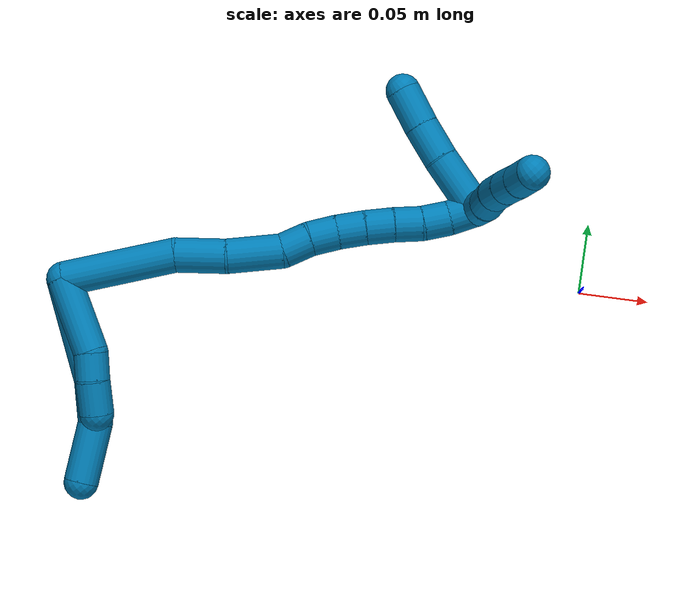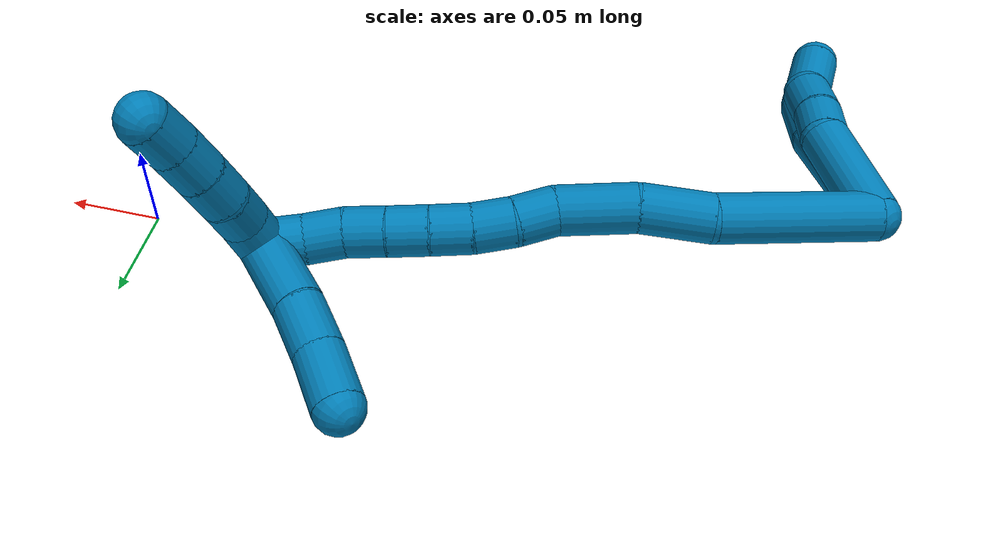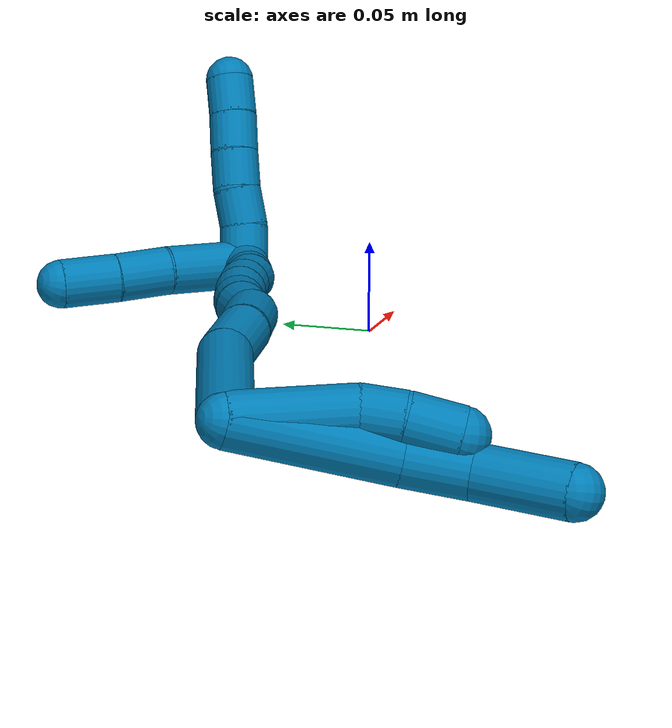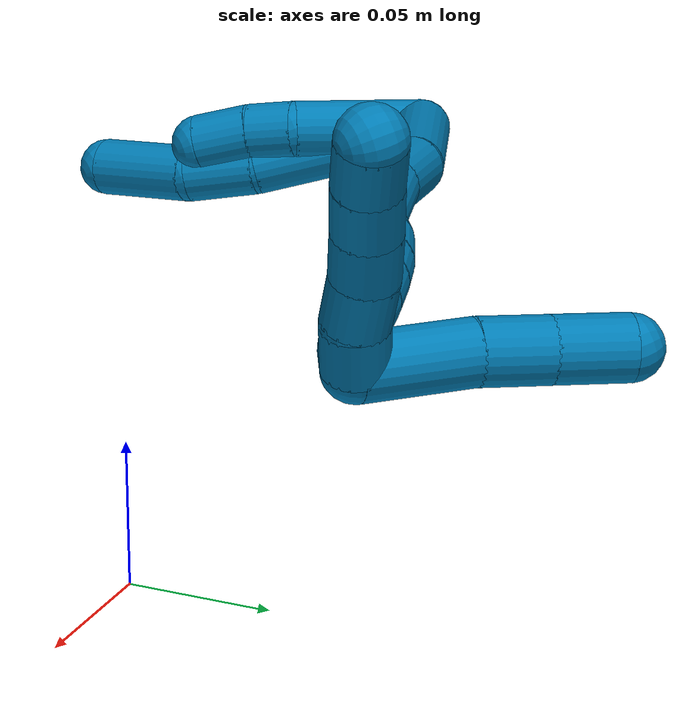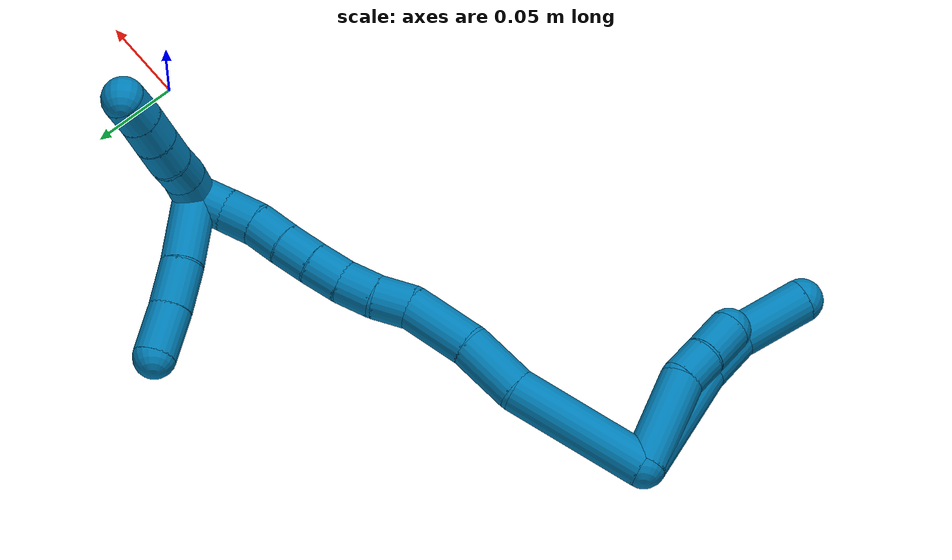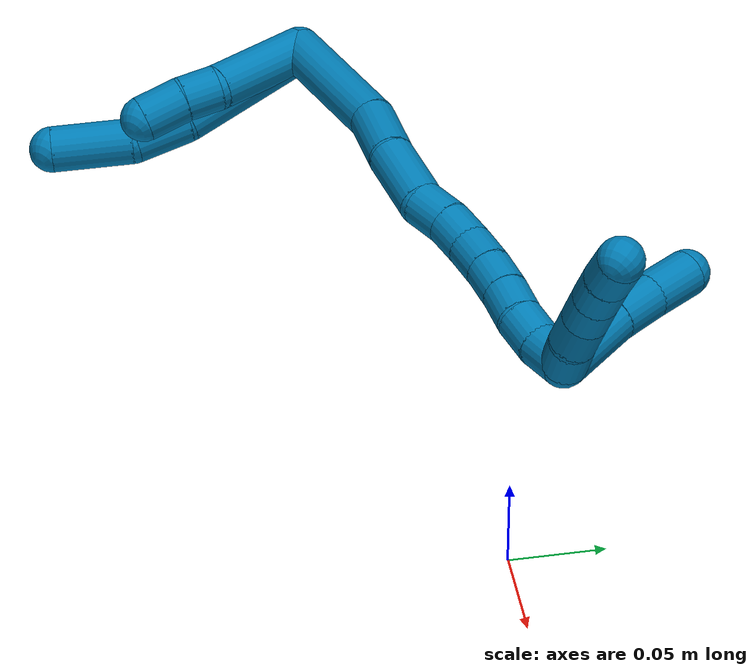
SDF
<sdf version="1.7">
 <world name="default">
  <model name="9">
   <static>0</static>
   <link name="9">
    <collision name="collision-cylinder-e_1_2_8">
     <pose>-0.004728 -0.015095 0.034195 0.41571 -0.125818 -0.026569</pose>
     <geometry><cylinder><radius>0.0125</radius><length>0.075352</length></cylinder></geometry>
     <surface>
      <friction><ode><mu>1.16</mu><mu2>1.16</mu2><slip1>0</slip1><slip2>0</slip2></ode></friction>
      <contact><ode><kp>1e+06</kp><kd>1</kd><max_vel>0</max_vel><min_depth>0.001</min_depth></ode></contact>
     </surface>
    </collision>
    <visual name="visual-cylinder-e_1_2_8">
     <pose>-0.004728 -0.015095 0.034195 0.41571 -0.125818 -0.026569</pose>
     <geometry><cylinder><radius>0.0125</radius><length>0.075352</length></cylinder></geometry>
     <material><ambient>0 0.490196 0.709804 1</ambient></material>
    </visual>
    <collision name="collision-cylinder-e_2_8_9">
     <pose>-0.013067 -0.038223 0.081009 0.566916 -0.236869 -0.069297</pose>
     <geometry><cylinder><radius>0.0125</radius><length>0.030777</length></cylinder></geometry>
     <surface>
      <friction><ode><mu>1.16</mu><mu2>1.16</mu2><slip1>0</slip1><slip2>0</slip2></ode></friction>
      <contact><ode><kp>1e+06</kp><kd>1</kd><max_vel>0</max_vel><min_depth>0.001</min_depth></ode></contact>
     </surface>
    </collision>
    <visual name="visual-cylinder-e_2_8_9">
     <pose>-0.013067 -0.038223 0.081009 0.566916 -0.236869 -0.069297</pose>
     <geometry><cylinder><radius>0.0125</radius><length>0.030777</length></cylinder></geometry>
     <material><ambient>0 0.490196 0.709804 1</ambient></material>
    </visual>
    <collision name="collision-cylinder-e_3_9_6">
     <pose>-0.024746 -0.062039 0.106549 0.884721 -0.376651 -0.180059</pose>
     <geometry><cylinder><radius>0.0125</radius><length>0.04387</length></cylinder></geometry>
     <surface>
      <friction><ode><mu>1.16</mu><mu2>1.16</mu2><slip1>0</slip1><slip2>0</slip2></ode></friction>
      <contact><ode><kp>1e+06</kp><kd>1</kd><max_vel>0</max_vel><min_depth>0.001</min_depth></ode></contact>
     </surface>
    </collision>
    <visual name="visual-cylinder-e_3_9_6">
     <pose>-0.024746 -0.062039 0.106549 0.884721 -0.376651 -0.180059</pose>
     <geometry><cylinder><radius>0.0125</radius><length>0.04387</length></cylinder></geometry>
     <material><ambient>0 0.490196 0.709804 1</ambient></material>
    </visual>
    <collision name="collision-cylinder-e_1_2_10">
     <pose>-0.009247 -0.006392 0.025627 0.244449 -0.336781 -0.041759</pose>
     <geometry><cylinder><radius>0.0125</radius><length>0.055969</length></cylinder></geometry>
     <surface>
      <friction><ode><mu>1.16</mu><mu2>1.16</mu2><slip1>0</slip1><slip2>0</slip2></ode></friction>
      <contact><ode><kp>1e+06</kp><kd>1</kd><max_vel>0</max_vel><min_depth>0.001</min_depth></ode></contact>
     </surface>
    </collision>
    <visual name="visual-cylinder-e_1_2_10">
     <pose>-0.009247 -0.006392 0.025627 0.244449 -0.336781 -0.041759</pose>
     <geometry><cylinder><radius>0.0125</radius><length>0.055969</length></cylinder></geometry>
     <material><ambient>0 0.490196 0.709804 1</ambient></material>
    </visual>
    <collision name="collision-cylinder-e_2_10_11">
     <pose>-0.021281 -0.018078 0.059269 0.583696 -0.282299 -0.085326</pose>
     <geometry><cylinder><radius>0.0125</radius><length>0.020002</length></cylinder></geometry>
     <surface>
      <friction><ode><mu>1.16</mu><mu2>1.16</mu2><slip1>0</slip1><slip2>0</slip2></ode></friction>
      <contact><ode><kp>1e+06</kp><kd>1</kd><max_vel>0</max_vel><min_depth>0.001</min_depth></ode></contact>
     </surface>
    </collision>
    <visual name="visual-cylinder-e_2_10_11">
     <pose>-0.021281 -0.018078 0.059269 0.583696 -0.282299 -0.085326</pose>
     <geometry><cylinder><radius>0.0125</radius><length>0.020002</length></cylinder></geometry>
     <material><ambient>0 0.490196 0.709804 1</ambient></material>
    </visual>
    <collision name="collision-cylinder-e_3_11_5">
     <pose>-0.02585 -0.029727 0.077322 0.564417 -0.148959 -0.043263</pose>
     <geometry><cylinder><radius>0.0125</radius><length>0.02403</length></cylinder></geometry>
     <surface>
      <friction><ode><mu>1.16</mu><mu2>1.16</mu2><slip1>0</slip1><slip2>0</slip2></ode></friction>
      <contact><ode><kp>1e+06</kp><kd>1</kd><max_vel>0</max_vel><min_depth>0.001</min_depth></ode></contact>
     </surface>
    </collision>
    <visual name="visual-cylinder-e_3_11_5">
     <pose>-0.02585 -0.029727 0.077322 0.564417 -0.148959 -0.043263</pose>
     <geometry><cylinder><radius>0.0125</radius><length>0.02403</length></cylinder></geometry>
     <material><ambient>0 0.490196 0.709804 1</ambient></material>
    </visual>
    <collision name="collision-cylinder-e_1_2_12">
     <pose>0.00703 0.03579 0.018399 -1.09593 0.172938 -0.105711</pose>
     <geometry><cylinder><radius>0.0125</radius><length>0.081703</length></cylinder></geometry>
     <surface>
      <friction><ode><mu>1.16</mu><mu2>1.16</mu2><slip1>0</slip1><slip2>0</slip2></ode></friction>
      <contact><ode><kp>1e+06</kp><kd>1</kd><max_vel>0</max_vel><min_depth>0.001</min_depth></ode></contact>
     </surface>
    </collision>
    <visual name="visual-cylinder-e_1_2_12">
     <pose>0.00703 0.03579 0.018399 -1.09593 0.172938 -0.105711</pose>
     <geometry><cylinder><radius>0.0125</radius><length>0.081703</length></cylinder></geometry>
     <material><ambient>0 0.490196 0.709804 1</ambient></material>
    </visual>
    <collision name="collision-cylinder-e_2_12_13">
     <pose>0.015894 0.085343 0.048424 -0.869446 0.101499 -0.047163</pose>
     <geometry><cylinder><radius>0.0125</radius><length>0.036219</length></cylinder></geometry>
     <surface>
      <friction><ode><mu>1.16</mu><mu2>1.16</mu2><slip1>0</slip1><slip2>0</slip2></ode></friction>
      <contact><ode><kp>1e+06</kp><kd>1</kd><max_vel>0</max_vel><min_depth>0.001</min_depth></ode></contact>
     </surface>
    </collision>
    <visual name="visual-cylinder-e_2_12_13">
     <pose>0.015894 0.085343 0.048424 -0.869446 0.101499 -0.047163</pose>
     <geometry><cylinder><radius>0.0125</radius><length>0.036219</length></cylinder></geometry>
     <material><ambient>0 0.490196 0.709804 1</ambient></material>
    </visual>
    <collision name="collision-cylinder-e_3_13_14">
     <pose>0.022908 0.114698 0.071337 -0.944119 0.262848 -0.134773</pose>
     <geometry><cylinder><radius>0.0125</radius><length>0.039866</length></cylinder></geometry>
     <surface>
      <friction><ode><mu>1.16</mu><mu2>1.16</mu2><slip1>0</slip1><slip2>0</slip2></ode></friction>
      <contact><ode><kp>1e+06</kp><kd>1</kd><max_vel>0</max_vel><min_depth>0.001</min_depth></ode></contact>
     </surface>
    </collision>
    <visual name="visual-cylinder-e_3_13_14">
     <pose>0.022908 0.114698 0.071337 -0.944119 0.262848 -0.134773</pose>
     <geometry><cylinder><radius>0.0125</radius><length>0.039866</length></cylinder></geometry>
     <material><ambient>0 0.490196 0.709804 1</ambient></material>
    </visual>
    <collision name="collision-cylinder-e_4_14_15">
     <pose>0.031845 0.139673 0.085594 -1.26442 0.364667 -0.268495</pose>
     <geometry><cylinder><radius>0.0125</radius><length>0.021071</length></cylinder></geometry>
     <surface>
      <friction><ode><mu>1.16</mu><mu2>1.16</mu2><slip1>0</slip1><slip2>0</slip2></ode></friction>
      <contact><ode><kp>1e+06</kp><kd>1</kd><max_vel>0</max_vel><min_depth>0.001</min_depth></ode></contact>
     </surface>
    </collision>
    <visual name="visual-cylinder-e_4_14_15">
     <pose>0.031845 0.139673 0.085594 -1.26442 0.364667 -0.268495</pose>
     <geometry><cylinder><radius>0.0125</radius><length>0.021071</length></cylinder></geometry>
     <material><ambient>0 0.490196 0.709804 1</ambient></material>
    </visual>
    <collision name="collision-cylinder-e_5_15_16">
     <pose>0.039036 0.157533 0.093087 -1.08054 0.343239 -0.207174</pose>
     <geometry><cylinder><radius>0.0125</radius><length>0.020404</length></cylinder></geometry>
     <surface>
      <friction><ode><mu>1.16</mu><mu2>1.16</mu2><slip1>0</slip1><slip2>0</slip2></ode></friction>
      <contact><ode><kp>1e+06</kp><kd>1</kd><max_vel>0</max_vel><min_depth>0.001</min_depth></ode></contact>
     </surface>
    </collision>
    <visual name="visual-cylinder-e_5_15_16">
     <pose>0.039036 0.157533 0.093087 -1.08054 0.343239 -0.207174</pose>
     <geometry><cylinder><radius>0.0125</radius><length>0.020404</length></cylinder></geometry>
     <material><ambient>0 0.490196 0.709804 1</ambient></material>
    </visual>
    <collision name="collision-cylinder-e_6_16_17">
     <pose>0.044853 0.174502 0.102804 -1.02195 0.234993 -0.132162</pose>
     <geometry><cylinder><radius>0.0125</radius><length>0.020475</length></cylinder></geometry>
     <surface>
      <friction><ode><mu>1.16</mu><mu2>1.16</mu2><slip1>0</slip1><slip2>0</slip2></ode></friction>
      <contact><ode><kp>1e+06</kp><kd>1</kd><max_vel>0</max_vel><min_depth>0.001</min_depth></ode></contact>
     </surface>
    </collision>
    <visual name="visual-cylinder-e_6_16_17">
     <pose>0.044853 0.174502 0.102804 -1.02195 0.234993 -0.132162</pose>
     <geometry><cylinder><radius>0.0125</radius><length>0.020475</length></cylinder></geometry>
     <material><ambient>0 0.490196 0.709804 1</ambient></material>
    </visual>
    <collision name="collision-cylinder-e_7_17_18">
     <pose>0.049762 0.19097 0.11364 -0.955069 0.252975 -0.131423</pose>
     <geometry><cylinder><radius>0.0125</radius><length>0.020178</length></cylinder></geometry>
     <surface>
      <friction><ode><mu>1.16</mu><mu2>1.16</mu2><slip1>0</slip1><slip2>0</slip2></ode></friction>
      <contact><ode><kp>1e+06</kp><kd>1</kd><max_vel>0</max_vel><min_depth>0.001</min_depth></ode></contact>
     </surface>
    </collision>
    <visual name="visual-cylinder-e_7_17_18">
     <pose>0.049762 0.19097 0.11364 -0.955069 0.252975 -0.131423</pose>
     <geometry><cylinder><radius>0.0125</radius><length>0.020178</length></cylinder></geometry>
     <material><ambient>0 0.490196 0.709804 1</ambient></material>
    </visual>
    <collision name="collision-cylinder-e_8_18_19">
     <pose>0.054926 0.20643 0.125378 -0.88729 0.266821 -0.127389</pose>
     <geometry><cylinder><radius>0.0125</radius><length>0.020017</length></cylinder></geometry>
     <surface>
      <friction><ode><mu>1.16</mu><mu2>1.16</mu2><slip1>0</slip1><slip2>0</slip2></ode></friction>
      <contact><ode><kp>1e+06</kp><kd>1</kd><max_vel>0</max_vel><min_depth>0.001</min_depth></ode></contact>
     </surface>
    </collision>
    <visual name="visual-cylinder-e_8_18_19">
     <pose>0.054926 0.20643 0.125378 -0.88729 0.266821 -0.127389</pose>
     <geometry><cylinder><radius>0.0125</radius><length>0.020017</length></cylinder></geometry>
     <material><ambient>0 0.490196 0.709804 1</ambient></material>
    </visual>
    <collision name="collision-cylinder-e_9_19_20">
     <pose>0.061294 0.221863 0.136329 -1.02251 0.380858 -0.215448</pose>
     <geometry><cylinder><radius>0.0125</radius><length>0.020064</length></cylinder></geometry>
     <surface>
      <friction><ode><mu>1.16</mu><mu2>1.16</mu2><slip1>0</slip1><slip2>0</slip2></ode></friction>
      <contact><ode><kp>1e+06</kp><kd>1</kd><max_vel>0</max_vel><min_depth>0.001</min_depth></ode></contact>
     </surface>
    </collision>
    <visual name="visual-cylinder-e_9_19_20">
     <pose>0.061294 0.221863 0.136329 -1.02251 0.380858 -0.215448</pose>
     <geometry><cylinder><radius>0.0125</radius><length>0.020064</length></cylinder></geometry>
     <material><ambient>0 0.490196 0.709804 1</ambient></material>
    </visual>
    <collision name="collision-cylinder-e_10_20_1">
     <pose>0.067409 0.238827 0.144797 -1.18962 0.240905 -0.163411</pose>
     <geometry><cylinder><radius>0.0125</radius><length>0.020002</length></cylinder></geometry>
     <surface>
      <friction><ode><mu>1.16</mu><mu2>1.16</mu2><slip1>0</slip1><slip2>0</slip2></ode></friction>
      <contact><ode><kp>1e+06</kp><kd>1</kd><max_vel>0</max_vel><min_depth>0.001</min_depth></ode></contact>
     </surface>
    </collision>
    <visual name="visual-cylinder-e_10_20_1">
     <pose>0.067409 0.238827 0.144797 -1.18962 0.240905 -0.163411</pose>
     <geometry><cylinder><radius>0.0125</radius><length>0.020002</length></cylinder></geometry>
     <material><ambient>0 0.490196 0.709804 1</ambient></material>
    </visual>
    <collision name="collision-cylinder-e_1_1_21">
     <pose>0.074722 0.248164 0.127235 -3.12638 0.228567 -3.00929</pose>
     <geometry><cylinder><radius>0.0125</radius><length>0.043486</length></cylinder></geometry>
     <surface>
      <friction><ode><mu>1.16</mu><mu2>1.16</mu2><slip1>0</slip1><slip2>0</slip2></ode></friction>
      <contact><ode><kp>1e+06</kp><kd>1</kd><max_vel>0</max_vel><min_depth>0.001</min_depth></ode></contact>
     </surface>
    </collision>
    <visual name="visual-cylinder-e_1_1_21">
     <pose>0.074722 0.248164 0.127235 -3.12638 0.228567 -3.00929</pose>
     <geometry><cylinder><radius>0.0125</radius><length>0.043486</length></cylinder></geometry>
     <material><ambient>0 0.490196 0.709804 1</ambient></material>
    </visual>
    <collision name="collision-cylinder-e_2_21_22">
     <pose>0.084085 0.249213 0.09314 -3.08537 0.330304 -2.80734</pose>
     <geometry><cylinder><radius>0.0125</radius><length>0.027359</length></cylinder></geometry>
     <surface>
      <friction><ode><mu>1.16</mu><mu2>1.16</mu2><slip1>0</slip1><slip2>0</slip2></ode></friction>
      <contact><ode><kp>1e+06</kp><kd>1</kd><max_vel>0</max_vel><min_depth>0.001</min_depth></ode></contact>
     </surface>
    </collision>
    <visual name="visual-cylinder-e_2_21_22">
     <pose>0.084085 0.249213 0.09314 -3.08537 0.330304 -2.80734</pose>
     <geometry><cylinder><radius>0.0125</radius><length>0.027359</length></cylinder></geometry>
     <material><ambient>0 0.490196 0.709804 1</ambient></material>
    </visual>
    <collision name="collision-cylinder-e_3_22_4">
     <pose>0.093271 0.25159 0.066537 -3.02163 0.331844 -2.45296</pose>
     <geometry><cylinder><radius>0.0125</radius><length>0.029155</length></cylinder></geometry>
     <surface>
      <friction><ode><mu>1.16</mu><mu2>1.16</mu2><slip1>0</slip1><slip2>0</slip2></ode></friction>
      <contact><ode><kp>1e+06</kp><kd>1</kd><max_vel>0</max_vel><min_depth>0.001</min_depth></ode></contact>
     </surface>
    </collision>
    <visual name="visual-cylinder-e_3_22_4">
     <pose>0.093271 0.25159 0.066537 -3.02163 0.331844 -2.45296</pose>
     <geometry><cylinder><radius>0.0125</radius><length>0.029155</length></cylinder></geometry>
     <material><ambient>0 0.490196 0.709804 1</ambient></material>
    </visual>
    <collision name="collision-cylinder-e_1_1_23">
     <pose>0.062268 0.254409 0.147935 -1.64292 -0.852133 0.907754</pose>
     <geometry><cylinder><radius>0.0125</radius><length>0.02</length></cylinder></geometry>
     <surface>
      <friction><ode><mu>1.16</mu><mu2>1.16</mu2><slip1>0</slip1><slip2>0</slip2></ode></friction>
      <contact><ode><kp>1e+06</kp><kd>1</kd><max_vel>0</max_vel><min_depth>0.001</min_depth></ode></contact>
     </surface>
    </collision>
    <visual name="visual-cylinder-e_1_1_23">
     <pose>0.062268 0.254409 0.147935 -1.64292 -0.852133 0.907754</pose>
     <geometry><cylinder><radius>0.0125</radius><length>0.02</length></cylinder></geometry>
     <material><ambient>0 0.490196 0.709804 1</ambient></material>
    </visual>
    <collision name="collision-cylinder-e_2_23_24">
     <pose>0.047691 0.267722 0.145276 -1.88401 -0.782506 1.03193</pose>
     <geometry><cylinder><radius>0.0125</radius><length>0.02</length></cylinder></geometry>
     <surface>
      <friction><ode><mu>1.16</mu><mu2>1.16</mu2><slip1>0</slip1><slip2>0</slip2></ode></friction>
      <contact><ode><kp>1e+06</kp><kd>1</kd><max_vel>0</max_vel><min_depth>0.001</min_depth></ode></contact>
     </surface>
    </collision>
    <visual name="visual-cylinder-e_2_23_24">
     <pose>0.047691 0.267722 0.145276 -1.88401 -0.782506 1.03193</pose>
     <geometry><cylinder><radius>0.0125</radius><length>0.02</length></cylinder></geometry>
     <material><ambient>0 0.490196 0.709804 1</ambient></material>
    </visual>
    <collision name="collision-cylinder-e_3_24_25">
     <pose>0.033565 0.281503 0.142414 -1.66668 -0.785942 0.856189</pose>
     <geometry><cylinder><radius>0.0125</radius><length>0.02</length></cylinder></geometry>
     <surface>
      <friction><ode><mu>1.16</mu><mu2>1.16</mu2><slip1>0</slip1><slip2>0</slip2></ode></friction>
      <contact><ode><kp>1e+06</kp><kd>1</kd><max_vel>0</max_vel><min_depth>0.001</min_depth></ode></contact>
     </surface>
    </collision>
    <visual name="visual-cylinder-e_3_24_25">
     <pose>0.033565 0.281503 0.142414 -1.66668 -0.785942 0.856189</pose>
     <geometry><cylinder><radius>0.0125</radius><length>0.02</length></cylinder></geometry>
     <material><ambient>0 0.490196 0.709804 1</ambient></material>
    </visual>
    <collision name="collision-cylinder-e_4_25_26">
     <pose>0.019567 0.295751 0.141531 -1.5995 -0.764685 0.784765</pose>
     <geometry><cylinder><radius>0.0125</radius><length>0.02</length></cylinder></geometry>
     <surface>
      <friction><ode><mu>1.16</mu><mu2>1.16</mu2><slip1>0</slip1><slip2>0</slip2></ode></friction>
      <contact><ode><kp>1e+06</kp><kd>1</kd><max_vel>0</max_vel><min_depth>0.001</min_depth></ode></contact>
     </surface>
    </collision>
    <visual name="visual-cylinder-e_4_25_26">
     <pose>0.019567 0.295751 0.141531 -1.5995 -0.764685 0.784765</pose>
     <geometry><cylinder><radius>0.0125</radius><length>0.02</length></cylinder></geometry>
     <material><ambient>0 0.490196 0.709804 1</ambient></material>
    </visual>
    <collision name="collision-cylinder-e_5_26_3">
     <pose>0.006069 0.310478 0.140766 -1.64491 -0.717427 0.76757</pose>
     <geometry><cylinder><radius>0.0125</radius><length>0.02</length></cylinder></geometry>
     <surface>
      <friction><ode><mu>1.16</mu><mu2>1.16</mu2><slip1>0</slip1><slip2>0</slip2></ode></friction>
      <contact><ode><kp>1e+06</kp><kd>1</kd><max_vel>0</max_vel><min_depth>0.001</min_depth></ode></contact>
     </surface>
    </collision>
    <visual name="visual-cylinder-e_5_26_3">
     <pose>0.006069 0.310478 0.140766 -1.64491 -0.717427 0.76757</pose>
     <geometry><cylinder><radius>0.0125</radius><length>0.02</length></cylinder></geometry>
     <material><ambient>0 0.490196 0.709804 1</ambient></material>
    </visual>
    <collision name="collision-sphere-3">
     <pose>-0.000505 0.317993 0.140208 0 -0 0</pose>
     <geometry><sphere><radius>0.0125</radius></sphere></geometry>
     <surface>
      <friction><ode><mu>1.16</mu><mu2>1.16</mu2><slip1>0</slip1><slip2>0</slip2></ode></friction>
      <contact><ode><kp>1e+06</kp><kd>1</kd><max_vel>0</max_vel><min_depth>0.001</min_depth></ode></contact>
     </surface>
    </collision>
    <visual name="visual-sphere-3">
     <pose>-0.000505 0.317993 0.140208 0 -0 0</pose>
     <geometry><sphere><radius>0.0125</radius></sphere></geometry>
     <material><ambient>0 0.490196 0.709804 1</ambient></material>
    </visual>
    <collision name="collision-sphere-26">
     <pose>0.012644 0.302964 0.141324 0 -0 0</pose>
     <geometry><sphere><radius>0.0125</radius></sphere></geometry>
     <surface>
      <friction><ode><mu>1.16</mu><mu2>1.16</mu2><slip1>0</slip1><slip2>0</slip2></ode></friction>
      <contact><ode><kp>1e+06</kp><kd>1</kd><max_vel>0</max_vel><min_depth>0.001</min_depth></ode></contact>
     </surface>
    </collision>
    <visual name="visual-sphere-26">
     <pose>0.012644 0.302964 0.141324 0 -0 0</pose>
     <geometry><sphere><radius>0.0125</radius></sphere></geometry>
     <material><ambient>0 0.490196 0.709804 1</ambient></material>
    </visual>
    <collision name="collision-sphere-25">
     <pose>0.02649 0.288538 0.141738 0 -0 0</pose>
     <geometry><sphere><radius>0.0125</radius></sphere></geometry>
     <surface>
      <friction><ode><mu>1.16</mu><mu2>1.16</mu2><slip1>0</slip1><slip2>0</slip2></ode></friction>
      <contact><ode><kp>1e+06</kp><kd>1</kd><max_vel>0</max_vel><min_depth>0.001</min_depth></ode></contact>
     </surface>
    </collision>
    <visual name="visual-sphere-25">
     <pose>0.02649 0.288538 0.141738 0 -0 0</pose>
     <geometry><sphere><radius>0.0125</radius></sphere></geometry>
     <material><ambient>0 0.490196 0.709804 1</ambient></material>
    </visual>
    <collision name="collision-sphere-24">
     <pose>0.04064 0.274468 0.143091 0 -0 0</pose>
     <geometry><sphere><radius>0.0125</radius></sphere></geometry>
     <surface>
      <friction><ode><mu>1.16</mu><mu2>1.16</mu2><slip1>0</slip1><slip2>0</slip2></ode></friction>
      <contact><ode><kp>1e+06</kp><kd>1</kd><max_vel>0</max_vel><min_depth>0.001</min_depth></ode></contact>
     </surface>
    </collision>
    <visual name="visual-sphere-24">
     <pose>0.04064 0.274468 0.143091 0 -0 0</pose>
     <geometry><sphere><radius>0.0125</radius></sphere></geometry>
     <material><ambient>0 0.490196 0.709804 1</ambient></material>
    </visual>
    <collision name="collision-sphere-23">
     <pose>0.054741 0.260975 0.147461 0 -0 0</pose>
     <geometry><sphere><radius>0.0125</radius></sphere></geometry>
     <surface>
      <friction><ode><mu>1.16</mu><mu2>1.16</mu2><slip1>0</slip1><slip2>0</slip2></ode></friction>
      <contact><ode><kp>1e+06</kp><kd>1</kd><max_vel>0</max_vel><min_depth>0.001</min_depth></ode></contact>
     </surface>
    </collision>
    <visual name="visual-sphere-23">
     <pose>0.054741 0.260975 0.147461 0 -0 0</pose>
     <geometry><sphere><radius>0.0125</radius></sphere></geometry>
     <material><ambient>0 0.490196 0.709804 1</ambient></material>
    </visual>
    <collision name="collision-sphere-4">
     <pose>0.09802 0.253239 0.052854 0 -0 0</pose>
     <geometry><sphere><radius>0.0125</radius></sphere></geometry>
     <surface>
      <friction><ode><mu>1.16</mu><mu2>1.16</mu2><slip1>0</slip1><slip2>0</slip2></ode></friction>
      <contact><ode><kp>1e+06</kp><kd>1</kd><max_vel>0</max_vel><min_depth>0.001</min_depth></ode></contact>
     </surface>
    </collision>
    <visual name="visual-sphere-4">
     <pose>0.09802 0.253239 0.052854 0 -0 0</pose>
     <geometry><sphere><radius>0.0125</radius></sphere></geometry>
     <material><ambient>0 0.490196 0.709804 1</ambient></material>
    </visual>
    <collision name="collision-sphere-22">
     <pose>0.088522 0.24994 0.08022 0 -0 0</pose>
     <geometry><sphere><radius>0.0125</radius></sphere></geometry>
     <surface>
      <friction><ode><mu>1.16</mu><mu2>1.16</mu2><slip1>0</slip1><slip2>0</slip2></ode></friction>
      <contact><ode><kp>1e+06</kp><kd>1</kd><max_vel>0</max_vel><min_depth>0.001</min_depth></ode></contact>
     </surface>
    </collision>
    <visual name="visual-sphere-22">
     <pose>0.088522 0.24994 0.08022 0 -0 0</pose>
     <geometry><sphere><radius>0.0125</radius></sphere></geometry>
     <material><ambient>0 0.490196 0.709804 1</ambient></material>
    </visual>
    <collision name="collision-sphere-21">
     <pose>0.079648 0.248486 0.106059 0 -0 0</pose>
     <geometry><sphere><radius>0.0125</radius></sphere></geometry>
     <surface>
      <friction><ode><mu>1.16</mu><mu2>1.16</mu2><slip1>0</slip1><slip2>0</slip2></ode></friction>
      <contact><ode><kp>1e+06</kp><kd>1</kd><max_vel>0</max_vel><min_depth>0.001</min_depth></ode></contact>
     </surface>
    </collision>
    <visual name="visual-sphere-21">
     <pose>0.079648 0.248486 0.106059 0 -0 0</pose>
     <geometry><sphere><radius>0.0125</radius></sphere></geometry>
     <material><ambient>0 0.490196 0.709804 1</ambient></material>
    </visual>
    <collision name="collision-sphere-1">
     <pose>0.069795 0.247842 0.14841 0 -0 0</pose>
     <geometry><sphere><radius>0.0125</radius></sphere></geometry>
     <surface>
      <friction><ode><mu>1.16</mu><mu2>1.16</mu2><slip1>0</slip1><slip2>0</slip2></ode></friction>
      <contact><ode><kp>1e+06</kp><kd>1</kd><max_vel>0</max_vel><min_depth>0.001</min_depth></ode></contact>
     </surface>
    </collision>
    <visual name="visual-sphere-1">
     <pose>0.069795 0.247842 0.14841 0 -0 0</pose>
     <geometry><sphere><radius>0.0125</radius></sphere></geometry>
     <material><ambient>0 0.490196 0.709804 1</ambient></material>
    </visual>
    <collision name="collision-sphere-11">
     <pose>-0.024067 -0.023372 0.067284 0 -0 0</pose>
     <geometry><sphere><radius>0.0125</radius></sphere></geometry>
     <surface>
      <friction><ode><mu>1.16</mu><mu2>1.16</mu2><slip1>0</slip1><slip2>0</slip2></ode></friction>
      <contact><ode><kp>1e+06</kp><kd>1</kd><max_vel>0</max_vel><min_depth>0.001</min_depth></ode></contact>
     </surface>
    </collision>
    <visual name="visual-sphere-11">
     <pose>-0.024067 -0.023372 0.067284 0 -0 0</pose>
     <geometry><sphere><radius>0.0125</radius></sphere></geometry>
     <material><ambient>0 0.490196 0.709804 1</ambient></material>
    </visual>
    <collision name="collision-sphere-10">
     <pose>-0.018495 -0.012785 0.051254 0 -0 0</pose>
     <geometry><sphere><radius>0.0125</radius></sphere></geometry>
     <surface>
      <friction><ode><mu>1.16</mu><mu2>1.16</mu2><slip1>0</slip1><slip2>0</slip2></ode></friction>
      <contact><ode><kp>1e+06</kp><kd>1</kd><max_vel>0</max_vel><min_depth>0.001</min_depth></ode></contact>
     </surface>
    </collision>
    <visual name="visual-sphere-10">
     <pose>-0.018495 -0.012785 0.051254 0 -0 0</pose>
     <geometry><sphere><radius>0.0125</radius></sphere></geometry>
     <material><ambient>0 0.490196 0.709804 1</ambient></material>
    </visual>
    <collision name="collision-sphere-6">
     <pose>-0.032814 -0.077821 0.119471 0 -0 0</pose>
     <geometry><sphere><radius>0.0125</radius></sphere></geometry>
     <surface>
      <friction><ode><mu>1.16</mu><mu2>1.16</mu2><slip1>0</slip1><slip2>0</slip2></ode></friction>
      <contact><ode><kp>1e+06</kp><kd>1</kd><max_vel>0</max_vel><min_depth>0.001</min_depth></ode></contact>
     </surface>
    </collision>
    <visual name="visual-sphere-6">
     <pose>-0.032814 -0.077821 0.119471 0 -0 0</pose>
     <geometry><sphere><radius>0.0125</radius></sphere></geometry>
     <material><ambient>0 0.490196 0.709804 1</ambient></material>
    </visual>
    <collision name="collision-sphere-9">
     <pose>-0.016678 -0.046257 0.093627 0 -0 0</pose>
     <geometry><sphere><radius>0.0125</radius></sphere></geometry>
     <surface>
      <friction><ode><mu>1.16</mu><mu2>1.16</mu2><slip1>0</slip1><slip2>0</slip2></ode></friction>
      <contact><ode><kp>1e+06</kp><kd>1</kd><max_vel>0</max_vel><min_depth>0.001</min_depth></ode></contact>
     </surface>
    </collision>
    <visual name="visual-sphere-9">
     <pose>-0.016678 -0.046257 0.093627 0 -0 0</pose>
     <geometry><sphere><radius>0.0125</radius></sphere></geometry>
     <material><ambient>0 0.490196 0.709804 1</ambient></material>
    </visual>
    <collision name="collision-sphere-2">
     <geometry><sphere><radius>0.0125</radius></sphere></geometry>
     <surface>
      <friction><ode><mu>1.16</mu><mu2>1.16</mu2><slip1>0</slip1><slip2>0</slip2></ode></friction>
      <contact><ode><kp>1e+06</kp><kd>1</kd><max_vel>0</max_vel><min_depth>0.001</min_depth></ode></contact>
     </surface>
    </collision>
    <visual name="visual-sphere-2">
     <geometry><sphere><radius>0.0125</radius></sphere></geometry>
     <material><ambient>0 0.490196 0.709804 1</ambient></material>
    </visual>
    <collision name="collision-sphere-19">
     <pose>0.057564 0.213915 0.131475 0 -0 0</pose>
     <geometry><sphere><radius>0.0125</radius></sphere></geometry>
     <surface>
      <friction><ode><mu>1.16</mu><mu2>1.16</mu2><slip1>0</slip1><slip2>0</slip2></ode></friction>
      <contact><ode><kp>1e+06</kp><kd>1</kd><max_vel>0</max_vel><min_depth>0.001</min_depth></ode></contact>
     </surface>
    </collision>
    <visual name="visual-sphere-19">
     <pose>0.057564 0.213915 0.131475 0 -0 0</pose>
     <geometry><sphere><radius>0.0125</radius></sphere></geometry>
     <material><ambient>0 0.490196 0.709804 1</ambient></material>
    </visual>
    <collision name="collision-sphere-8">
     <pose>-0.009456 -0.03019 0.06839 0 -0 0</pose>
     <geometry><sphere><radius>0.0125</radius></sphere></geometry>
     <surface>
      <friction><ode><mu>1.16</mu><mu2>1.16</mu2><slip1>0</slip1><slip2>0</slip2></ode></friction>
      <contact><ode><kp>1e+06</kp><kd>1</kd><max_vel>0</max_vel><min_depth>0.001</min_depth></ode></contact>
     </surface>
    </collision>
    <visual name="visual-sphere-8">
     <pose>-0.009456 -0.03019 0.06839 0 -0 0</pose>
     <geometry><sphere><radius>0.0125</radius></sphere></geometry>
     <material><ambient>0 0.490196 0.709804 1</ambient></material>
    </visual>
    <collision name="collision-sphere-5">
     <pose>-0.027633 -0.036083 0.087361 0 -0 0</pose>
     <geometry><sphere><radius>0.0125</radius></sphere></geometry>
     <surface>
      <friction><ode><mu>1.16</mu><mu2>1.16</mu2><slip1>0</slip1><slip2>0</slip2></ode></friction>
      <contact><ode><kp>1e+06</kp><kd>1</kd><max_vel>0</max_vel><min_depth>0.001</min_depth></ode></contact>
     </surface>
    </collision>
    <visual name="visual-sphere-5">
     <pose>-0.027633 -0.036083 0.087361 0 -0 0</pose>
     <geometry><sphere><radius>0.0125</radius></sphere></geometry>
     <material><ambient>0 0.490196 0.709804 1</ambient></material>
    </visual>
    <collision name="collision-sphere-12">
     <pose>0.014059 0.071579 0.036799 0 -0 0</pose>
     <geometry><sphere><radius>0.0125</radius></sphere></geometry>
     <surface>
      <friction><ode><mu>1.16</mu><mu2>1.16</mu2><slip1>0</slip1><slip2>0</slip2></ode></friction>
      <contact><ode><kp>1e+06</kp><kd>1</kd><max_vel>0</max_vel><min_depth>0.001</min_depth></ode></contact>
     </surface>
    </collision>
    <visual name="visual-sphere-12">
     <pose>0.014059 0.071579 0.036799 0 -0 0</pose>
     <geometry><sphere><radius>0.0125</radius></sphere></geometry>
     <material><ambient>0 0.490196 0.709804 1</ambient></material>
    </visual>
    <collision name="collision-sphere-13">
     <pose>0.017729 0.099107 0.060049 0 -0 0</pose>
     <geometry><sphere><radius>0.0125</radius></sphere></geometry>
     <surface>
      <friction><ode><mu>1.16</mu><mu2>1.16</mu2><slip1>0</slip1><slip2>0</slip2></ode></friction>
      <contact><ode><kp>1e+06</kp><kd>1</kd><max_vel>0</max_vel><min_depth>0.001</min_depth></ode></contact>
     </surface>
    </collision>
    <visual name="visual-sphere-13">
     <pose>0.017729 0.099107 0.060049 0 -0 0</pose>
     <geometry><sphere><radius>0.0125</radius></sphere></geometry>
     <material><ambient>0 0.490196 0.709804 1</ambient></material>
    </visual>
    <collision name="collision-sphere-14">
     <pose>0.028088 0.130289 0.082626 0 -0 0</pose>
     <geometry><sphere><radius>0.0125</radius></sphere></geometry>
     <surface>
      <friction><ode><mu>1.16</mu><mu2>1.16</mu2><slip1>0</slip1><slip2>0</slip2></ode></friction>
      <contact><ode><kp>1e+06</kp><kd>1</kd><max_vel>0</max_vel><min_depth>0.001</min_depth></ode></contact>
     </surface>
    </collision>
    <visual name="visual-sphere-14">
     <pose>0.028088 0.130289 0.082626 0 -0 0</pose>
     <geometry><sphere><radius>0.0125</radius></sphere></geometry>
     <material><ambient>0 0.490196 0.709804 1</ambient></material>
    </visual>
    <collision name="collision-sphere-15">
     <pose>0.035602 0.149058 0.088563 0 -0 0</pose>
     <geometry><sphere><radius>0.0125</radius></sphere></geometry>
     <surface>
      <friction><ode><mu>1.16</mu><mu2>1.16</mu2><slip1>0</slip1><slip2>0</slip2></ode></friction>
      <contact><ode><kp>1e+06</kp><kd>1</kd><max_vel>0</max_vel><min_depth>0.001</min_depth></ode></contact>
     </surface>
    </collision>
    <visual name="visual-sphere-15">
     <pose>0.035602 0.149058 0.088563 0 -0 0</pose>
     <geometry><sphere><radius>0.0125</radius></sphere></geometry>
     <material><ambient>0 0.490196 0.709804 1</ambient></material>
    </visual>
    <collision name="collision-sphere-16">
     <pose>0.042469 0.166008 0.09761 0 -0 0</pose>
     <geometry><sphere><radius>0.0125</radius></sphere></geometry>
     <surface>
      <friction><ode><mu>1.16</mu><mu2>1.16</mu2><slip1>0</slip1><slip2>0</slip2></ode></friction>
      <contact><ode><kp>1e+06</kp><kd>1</kd><max_vel>0</max_vel><min_depth>0.001</min_depth></ode></contact>
     </surface>
    </collision>
    <visual name="visual-sphere-16">
     <pose>0.042469 0.166008 0.09761 0 -0 0</pose>
     <geometry><sphere><radius>0.0125</radius></sphere></geometry>
     <material><ambient>0 0.490196 0.709804 1</ambient></material>
    </visual>
    <collision name="collision-sphere-17">
     <pose>0.047237 0.182996 0.107999 0 -0 0</pose>
     <geometry><sphere><radius>0.0125</radius></sphere></geometry>
     <surface>
      <friction><ode><mu>1.16</mu><mu2>1.16</mu2><slip1>0</slip1><slip2>0</slip2></ode></friction>
      <contact><ode><kp>1e+06</kp><kd>1</kd><max_vel>0</max_vel><min_depth>0.001</min_depth></ode></contact>
     </surface>
    </collision>
    <visual name="visual-sphere-17">
     <pose>0.047237 0.182996 0.107999 0 -0 0</pose>
     <geometry><sphere><radius>0.0125</radius></sphere></geometry>
     <material><ambient>0 0.490196 0.709804 1</ambient></material>
    </visual>
    <collision name="collision-sphere-18">
     <pose>0.052287 0.198944 0.119281 0 -0 0</pose>
     <geometry><sphere><radius>0.0125</radius></sphere></geometry>
     <surface>
      <friction><ode><mu>1.16</mu><mu2>1.16</mu2><slip1>0</slip1><slip2>0</slip2></ode></friction>
      <contact><ode><kp>1e+06</kp><kd>1</kd><max_vel>0</max_vel><min_depth>0.001</min_depth></ode></contact>
     </surface>
    </collision>
    <visual name="visual-sphere-18">
     <pose>0.052287 0.198944 0.119281 0 -0 0</pose>
     <geometry><sphere><radius>0.0125</radius></sphere></geometry>
     <material><ambient>0 0.490196 0.709804 1</ambient></material>
    </visual>
    <collision name="collision-sphere-20">
     <pose>0.065023 0.229811 0.141184 0 -0 0</pose>
     <geometry><sphere><radius>0.0125</radius></sphere></geometry>
     <surface>
      <friction><ode><mu>1.16</mu><mu2>1.16</mu2><slip1>0</slip1><slip2>0</slip2></ode></friction>
      <contact><ode><kp>1e+06</kp><kd>1</kd><max_vel>0</max_vel><min_depth>0.001</min_depth></ode></contact>
     </surface>
    </collision>
    <visual name="visual-sphere-20">
     <pose>0.065023 0.229811 0.141184 0 -0 0</pose>
     <geometry><sphere><radius>0.0125</radius></sphere></geometry>
     <material><ambient>0 0.490196 0.709804 1</ambient></material>
    </visual>
    <inertial>
     <pose>0.023166 0.112274 0.08126 0 -0 0</pose>
     <mass>0.75</mass>
     <inertia>
      <ixx>0.000115</ixx>
      <ixy>0</ixy>
      <ixz>0</ixz>
      <iyy>0.000122</iyy>
      <iyz>0</iyz>
      <izz>-1.5e-05</izz>
     </inertia>
    </inertial>
   </link>
   <pose>-0.367072 -0.045669 0.051496 2.08286 1.11268 1.31121</pose>
  </model>
 </world>
</sdf>
